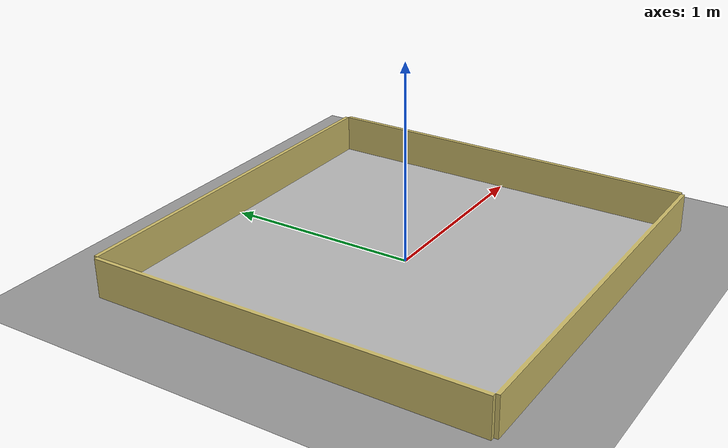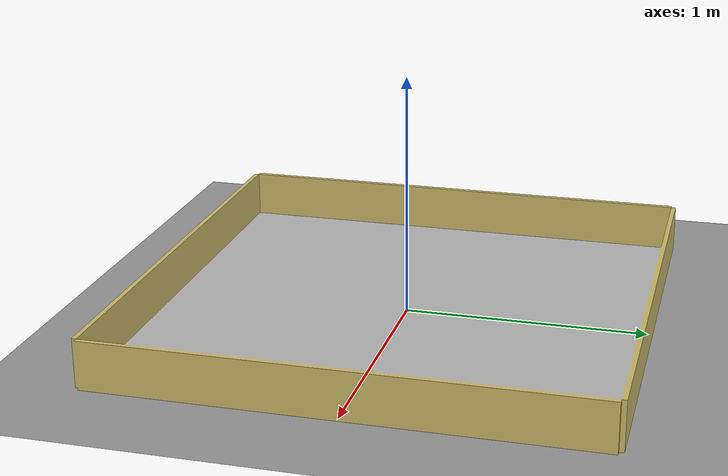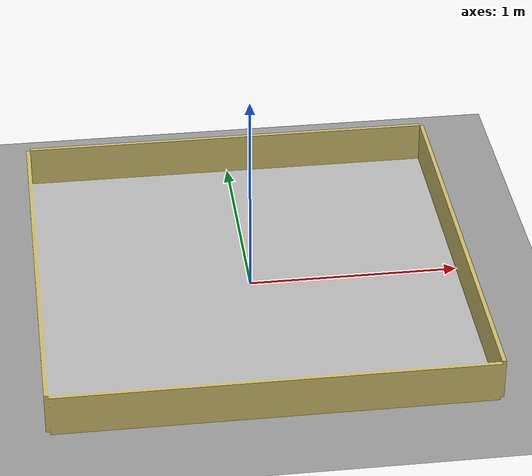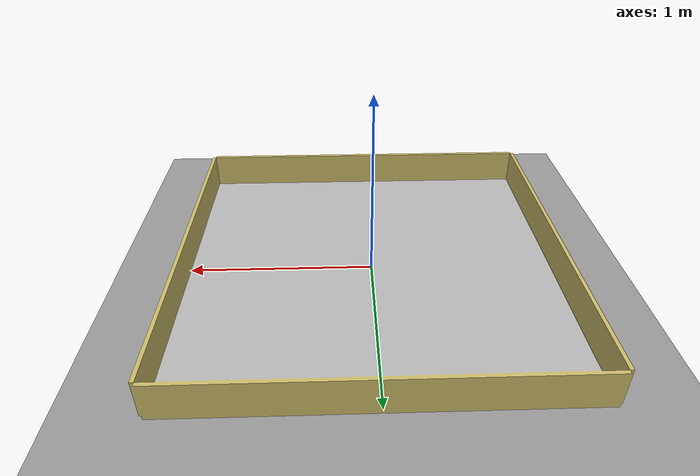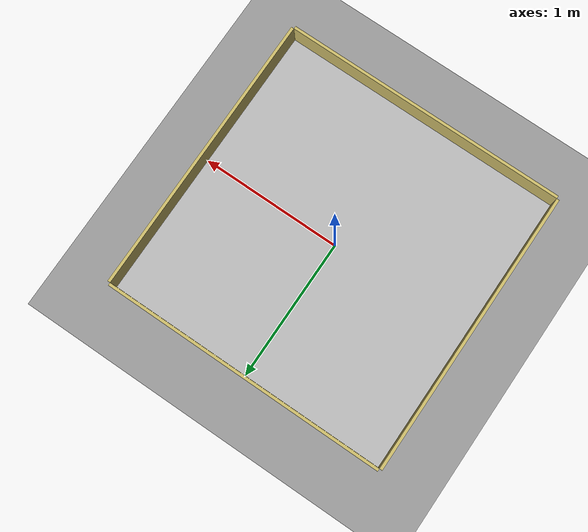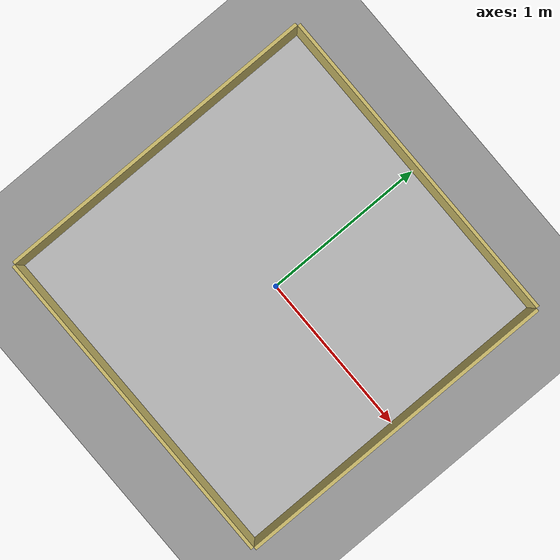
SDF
<sdf version="1.6">
 <world name="default">
  <gravity>0 0 -9.8</gravity>
  <magnetic_field>6e-06 2.3e-05 -4.2e-05</magnetic_field>
  <atmosphere type="adiabatic"/>
  <physics name="default_physics" default="0" type="ode">
   <max_step_size>0.001</max_step_size>
   <real_time_factor>1</real_time_factor>
   <real_time_update_rate>1000</real_time_update_rate>
  </physics>
  <scene><ambient>0.4 0.4 0.4 1</ambient><background>0.7 0.7 0.7 1</background><shadows>1</shadows></scene>
  <audio><device>default</device></audio>
  <spherical_coordinates>
   <surface_model>EARTH_WGS84</surface_model>
   <latitude_deg>0</latitude_deg>
   <longitude_deg>0</longitude_deg>
   <elevation>0</elevation>
   <heading_deg>0</heading_deg>
  </spherical_coordinates>
  <light name="user_point_light_0" type="point">
   <pose>-0.45 -0.55 1 0 -0 0</pose>
   <diffuse>0.5 0.5 0.5 1</diffuse>
   <specular>0.1 0.1 0.1 1</specular>
   <attenuation>
    <range>20</range>
    <constant>0.5</constant>
    <linear>0.01</linear>
    <quadratic>0.001</quadratic>
   </attenuation>
   <cast_shadows>0</cast_shadows>
   <direction>0 0 -1</direction>
  </light>
  <model name="pet_play_yard_ground_plane">
   <static>1</static>
   <link name="link">
    <collision name="collision">
     <geometry><plane><normal>0 0 1</normal><size>100 100</size></plane></geometry>
     <surface>
      <contact><collide_bitmask>65535</collide_bitmask></contact>
      <friction><ode><mu>100</mu><mu2>50</mu2></ode></friction>
     </surface>
    </collision>
    <visual name="visual">
     <cast_shadows>0</cast_shadows>
     <geometry><plane><normal>0 0 1</normal><size>100 100</size></plane></geometry>
     <material>
      <script><uri>file://media/materials/scripts/gazebo.material</uri><name>Gazebo/Grey</name></script>
     </material>
    </visual>
   </link>
  </model>
  <model name="pet_play_yard_03">
   <static>1</static>
   <link name="link">
    <visual name="visual">
     <cast_shadows>0</cast_shadows>
     <geometry><mesh><uri>model://pet_play_yard_03/mesh/pet_play_yard_03.dae</uri></mesh></geometry>
    </visual>
    <collision name="collision">
     <geometry><mesh><uri>model://pet_play_yard_03/mesh/pet_play_yard_03.dae</uri></mesh></geometry>
    </collision>
   </link>
  </model>
 </world>
</sdf>
